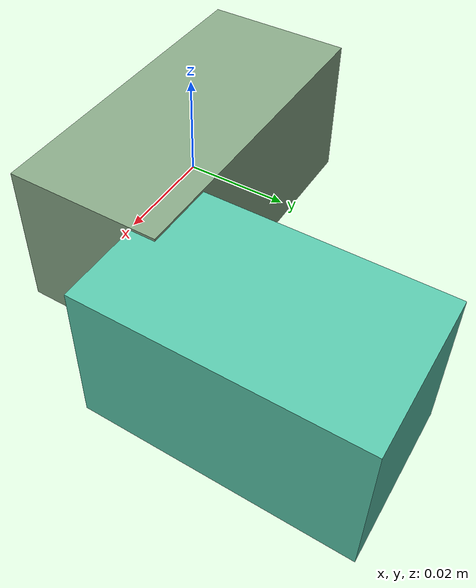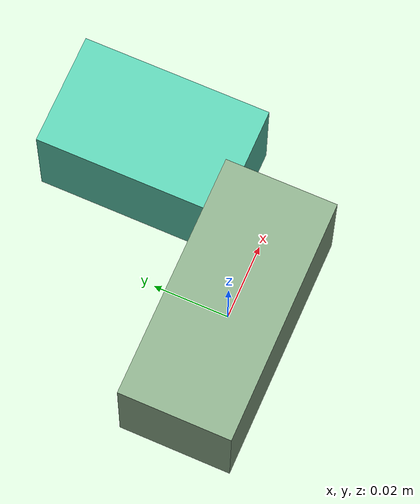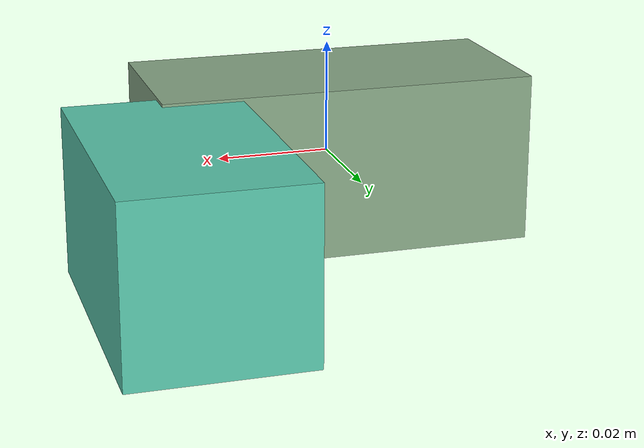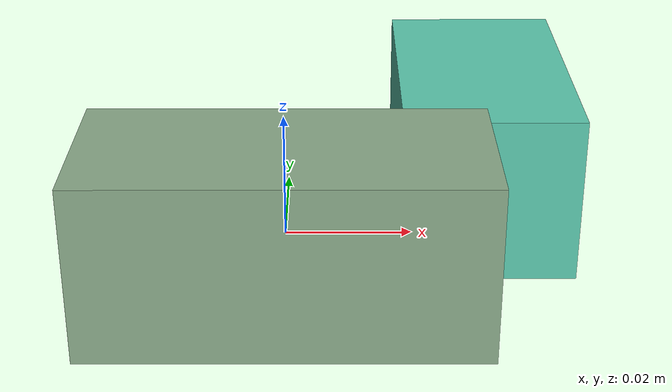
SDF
<sdf version="1.4"><world name="default"><model name="object0"><link name="link1"><pose>0 0 0 0 0 0</pose><inertial><pose>0 0 0 0 0 0</pose><mass>0.035638433030047975</mass><inertia><ixx>5.345764954507196e-06</ixx><ixy>0</ixy><iyy>1.56084961220007e-05</iyy><ixz>0</ixz><iyz>0</iyz><izz>1.56084961220007e-05</izz></inertia></inertial><visual name="link1_visual"><pose>0 0  0 0 0 0</pose><geometry><box><size>0.06599709820379256 0.03 0.03</size></box></geometry><material><diffuse>0.5311843677733173 0.6557694327508153 0.5273435113780433 1</diffuse></material></visual><collision><pose>0 0  0 0 0 0</pose><geometry><box><size>0.06599709820379256 0.03 0.03</size></box></geometry></collision></link><link name="link2"><pose>0.03406206524266499 0.03530504023473224 0 0 0 0</pose><inertial><pose>0 0 0 0 0 0</pose><mass>0.02718508388260172</mass><inertia><ixx>7.646693497949014e-06</ixx><ixy>0</ixy><iyy>3.944102586634132e-06</iyy><ixz>0</ixz><iyz>0</iyz><izz>7.78035349370514e-06</izz></inertia></inertial><visual name="link2_visual"><pose>0 0  0 0 0 0</pose><geometry><box><size>0.03 0.050342747930743934 0.028999999999999998</size></box></geometry><material><diffuse>0.3516229697394505 0.7796540921890094 0.6719886277909977 1</diffuse></material></visual><collision><pose>0 0  0 0 0 0</pose><geometry><box><size>0.03 0.050342747930743934 0.028999999999999998</size></box></geometry></collision></link><joint name="link_joint_0" type="fixed"><parent>link1</parent><child>link2</child><pose>0 0 0 0 0 0</pose><axis><xyz>0 0 1</xyz></axis></joint></model></world></sdf>
